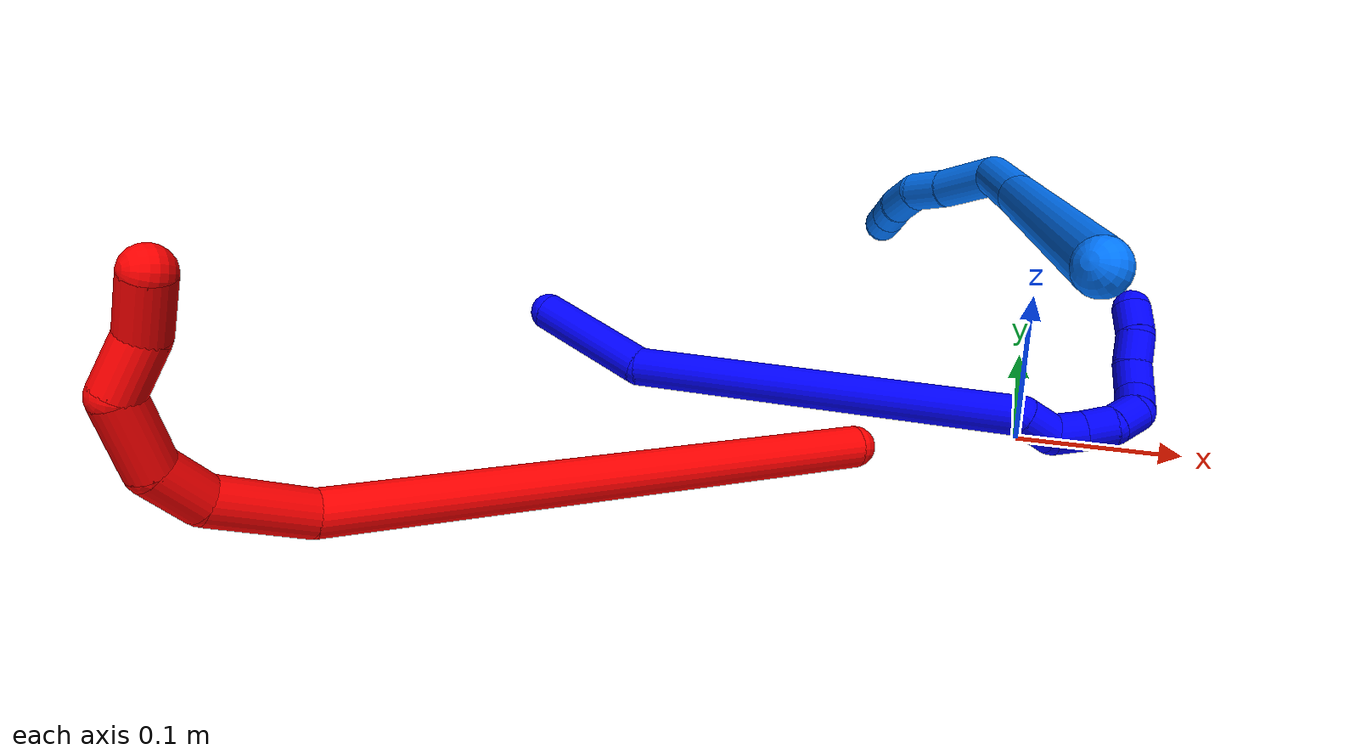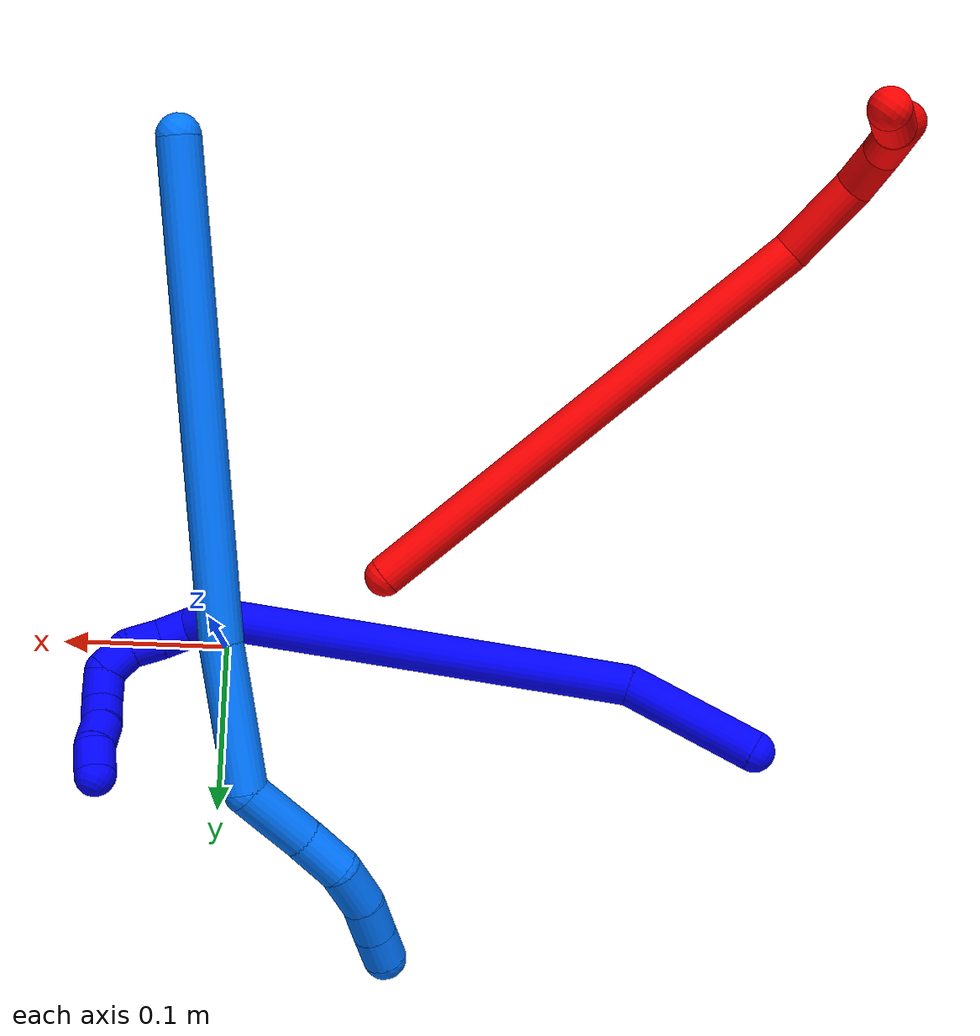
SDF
<sdf version="1.7">
 <world name="default">
  <model name="photoneo_s_sensor">
   <static>1</static>
   <pose>0 0 2 1.57079 1.57079 3.14159</pose>
   <link name="link">
    <inertial><mass>0.1</mass></inertial>
    <sensor name="sensor" type="depth">
     <update_rate>30</update_rate>
     <camera>
      <horizontal_fov>1.22</horizontal_fov>
      <image><width>1920</width><height>1200</height><format>B8G8R8</format></image>
      <clip><near>0.1</near><far>4</far></clip>
      <depth_camera><output>points</output></depth_camera>
     </camera>
     <plugin name="camera_plugin" filename="libgazebo_ros_depth_camera.so">
      <baseline>0.2</baseline>
      <alwaysOn>1</alwaysOn>
      <updateRate>0.0</updateRate>
      <cameraName>camera_ir</cameraName>
      <imageTopicName>/camera/color/image_raw</imageTopicName>
      <cameraInfoTopicName>/camera/color/camera_info</cameraInfoTopicName>
      <depthImageTopicName>/camera/depth/image_raw</depthImageTopicName>
      <depthImageCameraInfoTopicName>/camera/depth/camera_info</depthImageCameraInfoTopicName>
      <pointCloudTopicName>/camera/depth/points</pointCloudTopicName>
      <frameName>fr_optical</frameName>
      <pointCloudCutoff>0.1</pointCloudCutoff>
      <pointCloudCutoffMax>2.0</pointCloudCutoffMax>
      <distortionK1>0</distortionK1>
      <distortionK2>0</distortionK2>
      <distortionK3>0</distortionK3>
      <distortionT1>0</distortionT1>
      <distortionT2>0</distortionT2>
      <CxPrime>0</CxPrime>
      <Cx>0</Cx>
      <Cy>0</Cy>
      <focalLength>0</focalLength>
      <hackBaseline>0</hackBaseline>
     </plugin>
    </sensor>
   </link>
  </model>
  <model name="bin">
   <static>1</static>
   <link name="bottom">
    <collision name="collision-bottom">
     <pose>0 0 -0.01 0 -0 0</pose>
     <geometry><box><size>0.8 0.6 0.02</size></box></geometry>
     <surface>
      <friction><ode><mu>100</mu><mu2>100</mu2></ode></friction>
      <contact><collide_bitmask>65535</collide_bitmask></contact>
     </surface>
    </collision>
   </link>
   <link name="west_wall">
    <collision name="collision-west_wall">
     <pose>-0.41 0 0.1 0 -0 0</pose>
     <geometry><box><size>0.02 0.6 0.2</size></box></geometry>
     <surface>
      <friction><ode><mu>100</mu><mu2>100</mu2></ode></friction>
      <contact><collide_bitmask>65535</collide_bitmask></contact>
     </surface>
    </collision>
   </link>
   <link name="east_wall">
    <collision name="collision-east_wall">
     <pose>0.41 0 0.1 0 -0 0</pose>
     <geometry><box><size>0.02 0.6 0.2</size></box></geometry>
     <surface>
      <friction><ode><mu>100</mu><mu2>100</mu2></ode></friction>
      <contact><collide_bitmask>65535</collide_bitmask></contact>
     </surface>
    </collision>
   </link>
   <link name="south_wall">
    <collision name="collision-south_wall">
     <pose>0 -0.31 0.1 0 -0 0</pose>
     <geometry><box><size>0.8 0.02 0.2</size></box></geometry>
     <surface>
      <friction><ode><mu>100</mu><mu2>100</mu2></ode></friction>
      <contact><collide_bitmask>65535</collide_bitmask></contact>
     </surface>
    </collision>
   </link>
   <link name="north_wall">
    <collision name="collision-north_wall">
     <pose>0 0.31 0.1 0 -0 0</pose>
     <geometry><box><size>0.8 0.02 0.2</size></box></geometry>
     <surface>
      <friction><ode><mu>100</mu><mu2>100</mu2></ode></friction>
      <contact><collide_bitmask>65535</collide_bitmask></contact>
     </surface>
    </collision>
   </link>
  </model>
  <model name="1">
   <static>0</static>
   <link name="1">
    <collision name="collision-cylinder-e_1_1_4">
     <pose>0.037311 -0.018902 0.008462 1.14986 1.06408 0.728776</pose>
     <geometry><cylinder><radius>0.0125</radius><length>0.085346</length></cylinder></geometry>
     <surface>
      <friction><ode><mu>1.16</mu><mu2>1.16</mu2><slip1>0</slip1><slip2>0</slip2></ode></friction>
      <contact><ode><kp>1e+06</kp><kd>1</kd><max_vel>0</max_vel><min_depth>0.001</min_depth></ode></contact>
     </surface>
    </collision>
    <visual name="visual-cylinder-e_1_1_4">
     <pose>0.037311 -0.018902 0.008462 1.14986 1.06408 0.728776</pose>
     <geometry><cylinder><radius>0.0125</radius><length>0.085346</length></cylinder></geometry>
     <material><ambient>0 0 1 1</ambient></material>
    </visual>
    <collision name="collision-cylinder-e_2_4_5">
     <pose>0.189324 -0.082721 -0.007608 2.07069 1.15111 1.66021</pose>
     <geometry><cylinder><radius>0.0125</radius><length>0.251205</length></cylinder></geometry>
     <surface>
      <friction><ode><mu>1.16</mu><mu2>1.16</mu2><slip1>0</slip1><slip2>0</slip2></ode></friction>
      <contact><ode><kp>1e+06</kp><kd>1</kd><max_vel>0</max_vel><min_depth>0.001</min_depth></ode></contact>
     </surface>
    </collision>
    <visual name="visual-cylinder-e_2_4_5">
     <pose>0.189324 -0.082721 -0.007608 2.07069 1.15111 1.66021</pose>
     <geometry><cylinder><radius>0.0125</radius><length>0.251205</length></cylinder></geometry>
     <material><ambient>0 0 1 1</ambient></material>
    </visual>
    <collision name="collision-cylinder-e_3_5_6">
     <pose>0.308933 -0.137888 -0.03487 1.83108 0.433271 0.557823</pose>
     <geometry><cylinder><radius>0.0125</radius><length>0.023374</length></cylinder></geometry>
     <surface>
      <friction><ode><mu>1.16</mu><mu2>1.16</mu2><slip1>0</slip1><slip2>0</slip2></ode></friction>
      <contact><ode><kp>1e+06</kp><kd>1</kd><max_vel>0</max_vel><min_depth>0.001</min_depth></ode></contact>
     </surface>
    </collision>
    <visual name="visual-cylinder-e_3_5_6">
     <pose>0.308933 -0.137888 -0.03487 1.83108 0.433271 0.557823</pose>
     <geometry><cylinder><radius>0.0125</radius><length>0.023374</length></cylinder></geometry>
     <material><ambient>0 0 1 1</ambient></material>
    </visual>
    <collision name="collision-cylinder-e_4_6_7">
     <pose>0.320264 -0.152454 -0.043966 2.54577 0.695776 1.73644</pose>
     <geometry><cylinder><radius>0.0125</radius><length>0.020044</length></cylinder></geometry>
     <surface>
      <friction><ode><mu>1.16</mu><mu2>1.16</mu2><slip1>0</slip1><slip2>0</slip2></ode></friction>
      <contact><ode><kp>1e+06</kp><kd>1</kd><max_vel>0</max_vel><min_depth>0.001</min_depth></ode></contact>
     </surface>
    </collision>
    <visual name="visual-cylinder-e_4_6_7">
     <pose>0.320264 -0.152454 -0.043966 2.54577 0.695776 1.73644</pose>
     <geometry><cylinder><radius>0.0125</radius><length>0.020044</length></cylinder></geometry>
     <material><ambient>0 0 1 1</ambient></material>
    </visual>
    <collision name="collision-cylinder-e_5_7_8">
     <pose>0.333879 -0.160015 -0.0565 2.65725 0.801183 2.0855</pose>
     <geometry><cylinder><radius>0.0125</radius><length>0.020027</length></cylinder></geometry>
     <surface>
      <friction><ode><mu>1.16</mu><mu2>1.16</mu2><slip1>0</slip1><slip2>0</slip2></ode></friction>
      <contact><ode><kp>1e+06</kp><kd>1</kd><max_vel>0</max_vel><min_depth>0.001</min_depth></ode></contact>
     </surface>
    </collision>
    <visual name="visual-cylinder-e_5_7_8">
     <pose>0.333879 -0.160015 -0.0565 2.65725 0.801183 2.0855</pose>
     <geometry><cylinder><radius>0.0125</radius><length>0.020027</length></cylinder></geometry>
     <material><ambient>0 0 1 1</ambient></material>
    </visual>
    <collision name="collision-cylinder-e_6_8_9">
     <pose>0.34455 -0.165966 -0.071643 2.84875 0.355384 1.7665</pose>
     <geometry><cylinder><radius>0.0125</radius><length>0.020001</length></cylinder></geometry>
     <surface>
      <friction><ode><mu>1.16</mu><mu2>1.16</mu2><slip1>0</slip1><slip2>0</slip2></ode></friction>
      <contact><ode><kp>1e+06</kp><kd>1</kd><max_vel>0</max_vel><min_depth>0.001</min_depth></ode></contact>
     </surface>
    </collision>
    <visual name="visual-cylinder-e_6_8_9">
     <pose>0.34455 -0.165966 -0.071643 2.84875 0.355384 1.7665</pose>
     <geometry><cylinder><radius>0.0125</radius><length>0.020001</length></cylinder></geometry>
     <material><ambient>0 0 1 1</ambient></material>
    </visual>
    <collision name="collision-cylinder-e_7_9_10">
     <pose>0.344495 -0.16968 -0.089919 3.03377 -0.361225 -2.56693</pose>
     <geometry><cylinder><radius>0.0125</radius><length>0.02</length></cylinder></geometry>
     <surface>
      <friction><ode><mu>1.16</mu><mu2>1.16</mu2><slip1>0</slip1><slip2>0</slip2></ode></friction>
      <contact><ode><kp>1e+06</kp><kd>1</kd><max_vel>0</max_vel><min_depth>0.001</min_depth></ode></contact>
     </surface>
    </collision>
    <visual name="visual-cylinder-e_7_9_10">
     <pose>0.344495 -0.16968 -0.089919 3.03377 -0.361225 -2.56693</pose>
     <geometry><cylinder><radius>0.0125</radius><length>0.02</length></cylinder></geometry>
     <material><ambient>0 0 1 1</ambient></material>
    </visual>
    <collision name="collision-cylinder-e_8_10_11">
     <pose>0.339396 -0.164922 -0.107242 -2.51856 -0.157135 0.479592</pose>
     <geometry><cylinder><radius>0.0125</radius><length>0.020003</length></cylinder></geometry>
     <surface>
      <friction><ode><mu>1.16</mu><mu2>1.16</mu2><slip1>0</slip1><slip2>0</slip2></ode></friction>
      <contact><ode><kp>1e+06</kp><kd>1</kd><max_vel>0</max_vel><min_depth>0.001</min_depth></ode></contact>
     </surface>
    </collision>
    <visual name="visual-cylinder-e_8_10_11">
     <pose>0.339396 -0.164922 -0.107242 -2.51856 -0.157135 0.479592</pose>
     <geometry><cylinder><radius>0.0125</radius><length>0.020003</length></cylinder></geometry>
     <material><ambient>0 0 1 1</ambient></material>
    </visual>
    <collision name="collision-cylinder-e_9_11_12">
     <pose>0.337993 -0.154013 -0.123838 -2.60112 0.016186 -0.058416</pose>
     <geometry><cylinder><radius>0.0125</radius><length>0.02</length></cylinder></geometry>
     <surface>
      <friction><ode><mu>1.16</mu><mu2>1.16</mu2><slip1>0</slip1><slip2>0</slip2></ode></friction>
      <contact><ode><kp>1e+06</kp><kd>1</kd><max_vel>0</max_vel><min_depth>0.001</min_depth></ode></contact>
     </surface>
    </collision>
    <visual name="visual-cylinder-e_9_11_12">
     <pose>0.337993 -0.154013 -0.123838 -2.60112 0.016186 -0.058416</pose>
     <geometry><cylinder><radius>0.0125</radius><length>0.02</length></cylinder></geometry>
     <material><ambient>0 0 1 1</ambient></material>
    </visual>
    <collision name="collision-cylinder-e_10_12_2">
     <pose>0.335138 -0.145157 -0.141194 -2.74168 -0.306384 1.3021</pose>
     <geometry><cylinder><radius>0.0125</radius><length>0.02</length></cylinder></geometry>
     <surface>
      <friction><ode><mu>1.16</mu><mu2>1.16</mu2><slip1>0</slip1><slip2>0</slip2></ode></friction>
      <contact><ode><kp>1e+06</kp><kd>1</kd><max_vel>0</max_vel><min_depth>0.001</min_depth></ode></contact>
     </surface>
    </collision>
    <visual name="visual-cylinder-e_10_12_2">
     <pose>0.335138 -0.145157 -0.141194 -2.74168 -0.306384 1.3021</pose>
     <geometry><cylinder><radius>0.0125</radius><length>0.02</length></cylinder></geometry>
     <material><ambient>0 0 1 1</ambient></material>
    </visual>
    <collision name="collision-sphere-2">
     <pose>0.332122 -0.141444 -0.149976 0 -0 0</pose>
     <geometry><sphere><radius>0.0125</radius></sphere></geometry>
     <surface>
      <friction><ode><mu>1.16</mu><mu2>1.16</mu2><slip1>0</slip1><slip2>0</slip2></ode></friction>
      <contact><ode><kp>1e+06</kp><kd>1</kd><max_vel>0</max_vel><min_depth>0.001</min_depth></ode></contact>
     </surface>
    </collision>
    <visual name="visual-sphere-2">
     <pose>0.332122 -0.141444 -0.149976 0 -0 0</pose>
     <geometry><sphere><radius>0.0125</radius></sphere></geometry>
     <material><ambient>0 0 1 1</ambient></material>
    </visual>
    <collision name="collision-sphere-12">
     <pose>0.338154 -0.148869 -0.132412 0 -0 0</pose>
     <geometry><sphere><radius>0.0125</radius></sphere></geometry>
     <surface>
      <friction><ode><mu>1.16</mu><mu2>1.16</mu2><slip1>0</slip1><slip2>0</slip2></ode></friction>
      <contact><ode><kp>1e+06</kp><kd>1</kd><max_vel>0</max_vel><min_depth>0.001</min_depth></ode></contact>
     </surface>
    </collision>
    <visual name="visual-sphere-12">
     <pose>0.338154 -0.148869 -0.132412 0 -0 0</pose>
     <geometry><sphere><radius>0.0125</radius></sphere></geometry>
     <material><ambient>0 0 1 1</ambient></material>
    </visual>
    <collision name="collision-sphere-11">
     <pose>0.337831 -0.159158 -0.115265 0 -0 0</pose>
     <geometry><sphere><radius>0.0125</radius></sphere></geometry>
     <surface>
      <friction><ode><mu>1.16</mu><mu2>1.16</mu2><slip1>0</slip1><slip2>0</slip2></ode></friction>
      <contact><ode><kp>1e+06</kp><kd>1</kd><max_vel>0</max_vel><min_depth>0.001</min_depth></ode></contact>
     </surface>
    </collision>
    <visual name="visual-sphere-11">
     <pose>0.337831 -0.159158 -0.115265 0 -0 0</pose>
     <geometry><sphere><radius>0.0125</radius></sphere></geometry>
     <material><ambient>0 0 1 1</ambient></material>
    </visual>
    <collision name="collision-sphere-10">
     <pose>0.340961 -0.170686 -0.09922 0 -0 0</pose>
     <geometry><sphere><radius>0.0125</radius></sphere></geometry>
     <surface>
      <friction><ode><mu>1.16</mu><mu2>1.16</mu2><slip1>0</slip1><slip2>0</slip2></ode></friction>
      <contact><ode><kp>1e+06</kp><kd>1</kd><max_vel>0</max_vel><min_depth>0.001</min_depth></ode></contact>
     </surface>
    </collision>
    <visual name="visual-sphere-10">
     <pose>0.340961 -0.170686 -0.09922 0 -0 0</pose>
     <geometry><sphere><radius>0.0125</radius></sphere></geometry>
     <material><ambient>0 0 1 1</ambient></material>
    </visual>
    <collision name="collision-sphere-9">
     <pose>0.34803 -0.168673 -0.080619 0 -0 0</pose>
     <geometry><sphere><radius>0.0125</radius></sphere></geometry>
     <surface>
      <friction><ode><mu>1.16</mu><mu2>1.16</mu2><slip1>0</slip1><slip2>0</slip2></ode></friction>
      <contact><ode><kp>1e+06</kp><kd>1</kd><max_vel>0</max_vel><min_depth>0.001</min_depth></ode></contact>
     </surface>
    </collision>
    <visual name="visual-sphere-9">
     <pose>0.34803 -0.168673 -0.080619 0 -0 0</pose>
     <geometry><sphere><radius>0.0125</radius></sphere></geometry>
     <material><ambient>0 0 1 1</ambient></material>
    </visual>
    <collision name="collision-sphere-4">
     <pose>0.074622 -0.037803 0.016924 0 -0 0</pose>
     <geometry><sphere><radius>0.0125</radius></sphere></geometry>
     <surface>
      <friction><ode><mu>1.16</mu><mu2>1.16</mu2><slip1>0</slip1><slip2>0</slip2></ode></friction>
      <contact><ode><kp>1e+06</kp><kd>1</kd><max_vel>0</max_vel><min_depth>0.001</min_depth></ode></contact>
     </surface>
    </collision>
    <visual name="visual-sphere-4">
     <pose>0.074622 -0.037803 0.016924 0 -0 0</pose>
     <geometry><sphere><radius>0.0125</radius></sphere></geometry>
     <material><ambient>0 0 1 1</ambient></material>
    </visual>
    <collision name="collision-sphere-1">
     <geometry><sphere><radius>0.0125</radius></sphere></geometry>
     <surface>
      <friction><ode><mu>1.16</mu><mu2>1.16</mu2><slip1>0</slip1><slip2>0</slip2></ode></friction>
      <contact><ode><kp>1e+06</kp><kd>1</kd><max_vel>0</max_vel><min_depth>0.001</min_depth></ode></contact>
     </surface>
    </collision>
    <visual name="visual-sphere-1">
     <geometry><sphere><radius>0.0125</radius></sphere></geometry>
     <material><ambient>0 0 1 1</ambient></material>
    </visual>
    <collision name="collision-sphere-8">
     <pose>0.34107 -0.16326 -0.062666 0 -0 0</pose>
     <geometry><sphere><radius>0.0125</radius></sphere></geometry>
     <surface>
      <friction><ode><mu>1.16</mu><mu2>1.16</mu2><slip1>0</slip1><slip2>0</slip2></ode></friction>
      <contact><ode><kp>1e+06</kp><kd>1</kd><max_vel>0</max_vel><min_depth>0.001</min_depth></ode></contact>
     </surface>
    </collision>
    <visual name="visual-sphere-8">
     <pose>0.34107 -0.16326 -0.062666 0 -0 0</pose>
     <geometry><sphere><radius>0.0125</radius></sphere></geometry>
     <material><ambient>0 0 1 1</ambient></material>
    </visual>
    <collision name="collision-sphere-5">
     <pose>0.304026 -0.127638 -0.03214 0 -0 0</pose>
     <geometry><sphere><radius>0.0125</radius></sphere></geometry>
     <surface>
      <friction><ode><mu>1.16</mu><mu2>1.16</mu2><slip1>0</slip1><slip2>0</slip2></ode></friction>
      <contact><ode><kp>1e+06</kp><kd>1</kd><max_vel>0</max_vel><min_depth>0.001</min_depth></ode></contact>
     </surface>
    </collision>
    <visual name="visual-sphere-5">
     <pose>0.304026 -0.127638 -0.03214 0 -0 0</pose>
     <geometry><sphere><radius>0.0125</radius></sphere></geometry>
     <material><ambient>0 0 1 1</ambient></material>
    </visual>
    <collision name="collision-sphere-6">
     <pose>0.31384 -0.148137 -0.037599 0 -0 0</pose>
     <geometry><sphere><radius>0.0125</radius></sphere></geometry>
     <surface>
      <friction><ode><mu>1.16</mu><mu2>1.16</mu2><slip1>0</slip1><slip2>0</slip2></ode></friction>
      <contact><ode><kp>1e+06</kp><kd>1</kd><max_vel>0</max_vel><min_depth>0.001</min_depth></ode></contact>
     </surface>
    </collision>
    <visual name="visual-sphere-6">
     <pose>0.31384 -0.148137 -0.037599 0 -0 0</pose>
     <geometry><sphere><radius>0.0125</radius></sphere></geometry>
     <material><ambient>0 0 1 1</ambient></material>
    </visual>
    <collision name="collision-sphere-7">
     <pose>0.326687 -0.156771 -0.050333 0 -0 0</pose>
     <geometry><sphere><radius>0.0125</radius></sphere></geometry>
     <surface>
      <friction><ode><mu>1.16</mu><mu2>1.16</mu2><slip1>0</slip1><slip2>0</slip2></ode></friction>
      <contact><ode><kp>1e+06</kp><kd>1</kd><max_vel>0</max_vel><min_depth>0.001</min_depth></ode></contact>
     </surface>
    </collision>
    <visual name="visual-sphere-7">
     <pose>0.326687 -0.156771 -0.050333 0 -0 0</pose>
     <geometry><sphere><radius>0.0125</radius></sphere></geometry>
     <material><ambient>0 0 1 1</ambient></material>
    </visual>
    <inertial>
     <pose>0.210206 -0.095744 -0.029388 0 -0 0</pose>
     <mass>0.5</mass>
     <inertia>
      <ixx>0.000563</ixx>
      <ixy>0</ixy>
      <ixz>0</ixz>
      <iyy>0.001719</iyy>
      <iyz>0</iyz>
      <izz>-0.000776</izz>
     </inertia>
    </inertial>
   </link>
   <pose>-0.321985 0.056449 0.022664 1.83104 -0.369598 -0.405315</pose>
  </model>
  <model name="2">
   <static>0</static>
   <link name="2">
    <collision name="collision-cylinder-e_1_1_4">
     <pose>-0.029259 -0.040347 0.14996 0.262829 -0.186225 -0.024685</pose>
     <geometry><cylinder><radius>0.0125</radius><length>0.316051</length></cylinder></geometry>
     <surface>
      <friction><ode><mu>1.16</mu><mu2>1.16</mu2><slip1>0</slip1><slip2>0</slip2></ode></friction>
      <contact><ode><kp>1e+06</kp><kd>1</kd><max_vel>0</max_vel><min_depth>0.001</min_depth></ode></contact>
     </surface>
    </collision>
    <visual name="visual-cylinder-e_1_1_4">
     <pose>-0.029259 -0.040347 0.14996 0.262829 -0.186225 -0.024685</pose>
     <geometry><cylinder><radius>0.0125</radius><length>0.316051</length></cylinder></geometry>
     <material><ambient>1 0 0 1</ambient></material>
    </visual>
    <collision name="collision-cylinder-e_2_4_5">
     <pose>-0.063939 -0.078573 0.326318 -0.080179 -0.201931 0.008127</pose>
     <geometry><cylinder><radius>0.0125</radius><length>0.054063</length></cylinder></geometry>
     <surface>
      <friction><ode><mu>1.16</mu><mu2>1.16</mu2><slip1>0</slip1><slip2>0</slip2></ode></friction>
      <contact><ode><kp>1e+06</kp><kd>1</kd><max_vel>0</max_vel><min_depth>0.001</min_depth></ode></contact>
     </surface>
    </collision>
    <visual name="visual-cylinder-e_2_4_5">
     <pose>-0.063939 -0.078573 0.326318 -0.080179 -0.201931 0.008127</pose>
     <geometry><cylinder><radius>0.0125</radius><length>0.054063</length></cylinder></geometry>
     <material><ambient>1 0 0 1</ambient></material>
    </visual>
    <collision name="collision-cylinder-e_3_5_6">
     <pose>-0.073362 -0.069329 0.365291 -0.515398 -0.270116 0.071597</pose>
     <geometry><cylinder><radius>0.0125</radius><length>0.029994</length></cylinder></geometry>
     <surface>
      <friction><ode><mu>1.16</mu><mu2>1.16</mu2><slip1>0</slip1><slip2>0</slip2></ode></friction>
      <contact><ode><kp>1e+06</kp><kd>1</kd><max_vel>0</max_vel><min_depth>0.001</min_depth></ode></contact>
     </surface>
    </collision>
    <visual name="visual-cylinder-e_3_5_6">
     <pose>-0.073362 -0.069329 0.365291 -0.515398 -0.270116 0.071597</pose>
     <geometry><cylinder><radius>0.0125</radius><length>0.029994</length></cylinder></geometry>
     <material><ambient>1 0 0 1</ambient></material>
    </visual>
    <collision name="collision-cylinder-e_4_6_7">
     <pose>-0.084397 -0.04656 0.387837 -1.00337 -0.362375 0.200293</pose>
     <geometry><cylinder><radius>0.0125</radius><length>0.039681</length></cylinder></geometry>
     <surface>
      <friction><ode><mu>1.16</mu><mu2>1.16</mu2><slip1>0</slip1><slip2>0</slip2></ode></friction>
      <contact><ode><kp>1e+06</kp><kd>1</kd><max_vel>0</max_vel><min_depth>0.001</min_depth></ode></contact>
     </surface>
    </collision>
    <visual name="visual-cylinder-e_4_6_7">
     <pose>-0.084397 -0.04656 0.387837 -1.00337 -0.362375 0.200293</pose>
     <geometry><cylinder><radius>0.0125</radius><length>0.039681</length></cylinder></geometry>
     <material><ambient>1 0 0 1</ambient></material>
    </visual>
    <collision name="collision-cylinder-e_5_7_8">
     <pose>-0.095566 -0.017419 0.394436 -1.81566 -0.288944 0.368399</pose>
     <geometry><cylinder><radius>0.0125</radius><length>0.029027</length></cylinder></geometry>
     <surface>
      <friction><ode><mu>1.16</mu><mu2>1.16</mu2><slip1>0</slip1><slip2>0</slip2></ode></friction>
      <contact><ode><kp>1e+06</kp><kd>1</kd><max_vel>0</max_vel><min_depth>0.001</min_depth></ode></contact>
     </surface>
    </collision>
    <visual name="visual-cylinder-e_5_7_8">
     <pose>-0.095566 -0.017419 0.394436 -1.81566 -0.288944 0.368399</pose>
     <geometry><cylinder><radius>0.0125</radius><length>0.029027</length></cylinder></geometry>
     <material><ambient>1 0 0 1</ambient></material>
    </visual>
    <collision name="collision-cylinder-e_6_8_2">
     <pose>-0.102052 0.011263 0.393711 -1.39819 -0.15136 0.127326</pose>
     <geometry><cylinder><radius>0.0125</radius><length>0.031185</length></cylinder></geometry>
     <surface>
      <friction><ode><mu>1.16</mu><mu2>1.16</mu2><slip1>0</slip1><slip2>0</slip2></ode></friction>
      <contact><ode><kp>1e+06</kp><kd>1</kd><max_vel>0</max_vel><min_depth>0.001</min_depth></ode></contact>
     </surface>
    </collision>
    <visual name="visual-cylinder-e_6_8_2">
     <pose>-0.102052 0.011263 0.393711 -1.39819 -0.15136 0.127326</pose>
     <geometry><cylinder><radius>0.0125</radius><length>0.031185</length></cylinder></geometry>
     <material><ambient>1 0 0 1</ambient></material>
    </visual>
    <collision name="collision-sphere-2">
     <pose>-0.104403 0.026448 0.396358 0 -0 0</pose>
     <geometry><sphere><radius>0.0125</radius></sphere></geometry>
     <surface>
      <friction><ode><mu>1.16</mu><mu2>1.16</mu2><slip1>0</slip1><slip2>0</slip2></ode></friction>
      <contact><ode><kp>1e+06</kp><kd>1</kd><max_vel>0</max_vel><min_depth>0.001</min_depth></ode></contact>
     </surface>
    </collision>
    <visual name="visual-sphere-2">
     <pose>-0.104403 0.026448 0.396358 0 -0 0</pose>
     <geometry><sphere><radius>0.0125</radius></sphere></geometry>
     <material><ambient>1 0 0 1</ambient></material>
    </visual>
    <collision name="collision-sphere-4">
     <pose>-0.058517 -0.080695 0.299921 0 -0 0</pose>
     <geometry><sphere><radius>0.0125</radius></sphere></geometry>
     <surface>
      <friction><ode><mu>1.16</mu><mu2>1.16</mu2><slip1>0</slip1><slip2>0</slip2></ode></friction>
      <contact><ode><kp>1e+06</kp><kd>1</kd><max_vel>0</max_vel><min_depth>0.001</min_depth></ode></contact>
     </surface>
    </collision>
    <visual name="visual-sphere-4">
     <pose>-0.058517 -0.080695 0.299921 0 -0 0</pose>
     <geometry><sphere><radius>0.0125</radius></sphere></geometry>
     <material><ambient>1 0 0 1</ambient></material>
    </visual>
    <collision name="collision-sphere-1">
     <geometry><sphere><radius>0.0125</radius></sphere></geometry>
     <surface>
      <friction><ode><mu>1.16</mu><mu2>1.16</mu2><slip1>0</slip1><slip2>0</slip2></ode></friction>
      <contact><ode><kp>1e+06</kp><kd>1</kd><max_vel>0</max_vel><min_depth>0.001</min_depth></ode></contact>
     </surface>
    </collision>
    <visual name="visual-sphere-1">
     <geometry><sphere><radius>0.0125</radius></sphere></geometry>
     <material><ambient>1 0 0 1</ambient></material>
    </visual>
    <collision name="collision-sphere-8">
     <pose>-0.099701 -0.003922 0.391063 0 -0 0</pose>
     <geometry><sphere><radius>0.0125</radius></sphere></geometry>
     <surface>
      <friction><ode><mu>1.16</mu><mu2>1.16</mu2><slip1>0</slip1><slip2>0</slip2></ode></friction>
      <contact><ode><kp>1e+06</kp><kd>1</kd><max_vel>0</max_vel><min_depth>0.001</min_depth></ode></contact>
     </surface>
    </collision>
    <visual name="visual-sphere-8">
     <pose>-0.099701 -0.003922 0.391063 0 -0 0</pose>
     <geometry><sphere><radius>0.0125</radius></sphere></geometry>
     <material><ambient>1 0 0 1</ambient></material>
    </visual>
    <collision name="collision-sphere-5">
     <pose>-0.06936 -0.076452 0.352715 0 -0 0</pose>
     <geometry><sphere><radius>0.0125</radius></sphere></geometry>
     <surface>
      <friction><ode><mu>1.16</mu><mu2>1.16</mu2><slip1>0</slip1><slip2>0</slip2></ode></friction>
      <contact><ode><kp>1e+06</kp><kd>1</kd><max_vel>0</max_vel><min_depth>0.001</min_depth></ode></contact>
     </surface>
    </collision>
    <visual name="visual-sphere-5">
     <pose>-0.06936 -0.076452 0.352715 0 -0 0</pose>
     <geometry><sphere><radius>0.0125</radius></sphere></geometry>
     <material><ambient>1 0 0 1</ambient></material>
    </visual>
    <collision name="collision-sphere-6">
     <pose>-0.077364 -0.062205 0.377866 0 -0 0</pose>
     <geometry><sphere><radius>0.0125</radius></sphere></geometry>
     <surface>
      <friction><ode><mu>1.16</mu><mu2>1.16</mu2><slip1>0</slip1><slip2>0</slip2></ode></friction>
      <contact><ode><kp>1e+06</kp><kd>1</kd><max_vel>0</max_vel><min_depth>0.001</min_depth></ode></contact>
     </surface>
    </collision>
    <visual name="visual-sphere-6">
     <pose>-0.077364 -0.062205 0.377866 0 -0 0</pose>
     <geometry><sphere><radius>0.0125</radius></sphere></geometry>
     <material><ambient>1 0 0 1</ambient></material>
    </visual>
    <collision name="collision-sphere-7">
     <pose>-0.09143 -0.030916 0.397808 0 -0 0</pose>
     <geometry><sphere><radius>0.0125</radius></sphere></geometry>
     <surface>
      <friction><ode><mu>1.16</mu><mu2>1.16</mu2><slip1>0</slip1><slip2>0</slip2></ode></friction>
      <contact><ode><kp>1e+06</kp><kd>1</kd><max_vel>0</max_vel><min_depth>0.001</min_depth></ode></contact>
     </surface>
    </collision>
    <visual name="visual-sphere-7">
     <pose>-0.09143 -0.030916 0.397808 0 -0 0</pose>
     <geometry><sphere><radius>0.0125</radius></sphere></geometry>
     <material><ambient>1 0 0 1</ambient></material>
    </visual>
    <inertial>
     <pose>-0.048419 -0.042162 0.23022 0 -0 0</pose>
     <mass>0.5</mass>
     <inertia>
      <ixx>0.002559</ixx>
      <ixy>0</ixy>
      <ixz>0</ixz>
      <iyy>0.002518</iyy>
      <iyz>0</iyz>
      <izz>0.001188</izz>
     </inertia>
    </inertial>
   </link>
   <pose>-0.095869 -0.045473 0.011499 1.15284 0.30018 -0.751594</pose>
  </model>
  <model name="14">
   <static>0</static>
   <link name="14">
    <collision name="collision-cylinder-e_1_1_4">
     <pose>0.003725 0.081868 -0.109534 -2.49974 0.027231 -0.081879</pose>
     <geometry><cylinder><radius>0.0125</radius><length>0.273597</length></cylinder></geometry>
     <surface>
      <friction><ode><mu>1.16</mu><mu2>1.16</mu2><slip1>0</slip1><slip2>0</slip2></ode></friction>
      <contact><ode><kp>1e+06</kp><kd>1</kd><max_vel>0</max_vel><min_depth>0.001</min_depth></ode></contact>
     </surface>
    </collision>
    <visual name="visual-cylinder-e_1_1_4">
     <pose>0.003725 0.081868 -0.109534 -2.49974 0.027231 -0.081879</pose>
     <geometry><cylinder><radius>0.0125</radius><length>0.273597</length></cylinder></geometry>
     <material><ambient>0 0.462745 1 1</ambient></material>
    </visual>
    <collision name="collision-cylinder-e_2_4_5">
     <pose>0.009263 0.191833 -0.249445 -2.39517 0.043792 -0.111741</pose>
     <geometry><cylinder><radius>0.0125</radius><length>0.082838</length></cylinder></geometry>
     <surface>
      <friction><ode><mu>1.16</mu><mu2>1.16</mu2><slip1>0</slip1><slip2>0</slip2></ode></friction>
      <contact><ode><kp>1e+06</kp><kd>1</kd><max_vel>0</max_vel><min_depth>0.001</min_depth></ode></contact>
     </surface>
    </collision>
    <visual name="visual-cylinder-e_2_4_5">
     <pose>0.009263 0.191833 -0.249445 -2.39517 0.043792 -0.111741</pose>
     <geometry><cylinder><radius>0.0125</radius><length>0.082838</length></cylinder></geometry>
     <material><ambient>0 0.462745 1 1</ambient></material>
    </visual>
    <collision name="collision-cylinder-e_3_5_6">
     <pose>7.9e-05 0.237356 -0.286304 -1.92688 -0.53411 0.750056</pose>
     <geometry><cylinder><radius>0.0125</radius><length>0.043203</length></cylinder></geometry>
     <surface>
      <friction><ode><mu>1.16</mu><mu2>1.16</mu2><slip1>0</slip1><slip2>0</slip2></ode></friction>
      <contact><ode><kp>1e+06</kp><kd>1</kd><max_vel>0</max_vel><min_depth>0.001</min_depth></ode></contact>
     </surface>
    </collision>
    <visual name="visual-cylinder-e_3_5_6">
     <pose>7.9e-05 0.237356 -0.286304 -1.92688 -0.53411 0.750056</pose>
     <geometry><cylinder><radius>0.0125</radius><length>0.043203</length></cylinder></geometry>
     <material><ambient>0 0.462745 1 1</ambient></material>
    </visual>
    <collision name="collision-cylinder-e_4_6_7">
     <pose>-0.016966 0.267068 -0.296918 -1.89527 -0.436623 0.598806</pose>
     <geometry><cylinder><radius>0.0125</radius><length>0.028607</length></cylinder></geometry>
     <surface>
      <friction><ode><mu>1.16</mu><mu2>1.16</mu2><slip1>0</slip1><slip2>0</slip2></ode></friction>
      <contact><ode><kp>1e+06</kp><kd>1</kd><max_vel>0</max_vel><min_depth>0.001</min_depth></ode></contact>
     </surface>
    </collision>
    <visual name="visual-cylinder-e_4_6_7">
     <pose>-0.016966 0.267068 -0.296918 -1.89527 -0.436623 0.598806</pose>
     <geometry><cylinder><radius>0.0125</radius><length>0.028607</length></cylinder></geometry>
     <material><ambient>0 0.462745 1 1</ambient></material>
    </visual>
    <collision name="collision-cylinder-e_5_7_8">
     <pose>-0.030564 0.288364 -0.309215 -2.30697 -0.555567 1.14314</pose>
     <geometry><cylinder><radius>0.0125</radius><length>0.028625</length></cylinder></geometry>
     <surface>
      <friction><ode><mu>1.16</mu><mu2>1.16</mu2><slip1>0</slip1><slip2>0</slip2></ode></friction>
      <contact><ode><kp>1e+06</kp><kd>1</kd><max_vel>0</max_vel><min_depth>0.001</min_depth></ode></contact>
     </surface>
    </collision>
    <visual name="visual-cylinder-e_5_7_8">
     <pose>-0.030564 0.288364 -0.309215 -2.30697 -0.555567 1.14314</pose>
     <geometry><cylinder><radius>0.0125</radius><length>0.028625</length></cylinder></geometry>
     <material><ambient>0 0.462745 1 1</ambient></material>
    </visual>
    <collision name="collision-cylinder-e_6_8_9">
     <pose>-0.043145 0.303503 -0.325493 -2.49476 -0.459584 1.21863</pose>
     <geometry><cylinder><radius>0.0125</radius><length>0.022688</length></cylinder></geometry>
     <surface>
      <friction><ode><mu>1.16</mu><mu2>1.16</mu2><slip1>0</slip1><slip2>0</slip2></ode></friction>
      <contact><ode><kp>1e+06</kp><kd>1</kd><max_vel>0</max_vel><min_depth>0.001</min_depth></ode></contact>
     </surface>
    </collision>
    <visual name="visual-cylinder-e_6_8_9">
     <pose>-0.043145 0.303503 -0.325493 -2.49476 -0.459584 1.21863</pose>
     <geometry><cylinder><radius>0.0125</radius><length>0.022688</length></cylinder></geometry>
     <material><ambient>0 0.462745 1 1</ambient></material>
    </visual>
    <collision name="collision-cylinder-e_7_9_2">
     <pose>-0.052707 0.315265 -0.340831 -2.47918 -0.459276 1.19407</pose>
     <geometry><cylinder><radius>0.0125</radius><length>0.020442</length></cylinder></geometry>
     <surface>
      <friction><ode><mu>1.16</mu><mu2>1.16</mu2><slip1>0</slip1><slip2>0</slip2></ode></friction>
      <contact><ode><kp>1e+06</kp><kd>1</kd><max_vel>0</max_vel><min_depth>0.001</min_depth></ode></contact>
     </surface>
    </collision>
    <visual name="visual-cylinder-e_7_9_2">
     <pose>-0.052707 0.315265 -0.340831 -2.47918 -0.459276 1.19407</pose>
     <geometry><cylinder><radius>0.0125</radius><length>0.020442</length></cylinder></geometry>
     <material><ambient>0 0.462745 1 1</ambient></material>
    </visual>
    <collision name="collision-sphere-2">
     <pose>-0.057238 0.320899 -0.348055 0 -0 0</pose>
     <geometry><sphere><radius>0.0125</radius></sphere></geometry>
     <surface>
      <friction><ode><mu>1.16</mu><mu2>1.16</mu2><slip1>0</slip1><slip2>0</slip2></ode></friction>
      <contact><ode><kp>1e+06</kp><kd>1</kd><max_vel>0</max_vel><min_depth>0.001</min_depth></ode></contact>
     </surface>
    </collision>
    <visual name="visual-sphere-2">
     <pose>-0.057238 0.320899 -0.348055 0 -0 0</pose>
     <geometry><sphere><radius>0.0125</radius></sphere></geometry>
     <material><ambient>0 0.462745 1 1</ambient></material>
    </visual>
    <collision name="collision-sphere-9">
     <pose>-0.048176 0.30963 -0.333606 0 -0 0</pose>
     <geometry><sphere><radius>0.0125</radius></sphere></geometry>
     <surface>
      <friction><ode><mu>1.16</mu><mu2>1.16</mu2><slip1>0</slip1><slip2>0</slip2></ode></friction>
      <contact><ode><kp>1e+06</kp><kd>1</kd><max_vel>0</max_vel><min_depth>0.001</min_depth></ode></contact>
     </surface>
    </collision>
    <visual name="visual-sphere-9">
     <pose>-0.048176 0.30963 -0.333606 0 -0 0</pose>
     <geometry><sphere><radius>0.0125</radius></sphere></geometry>
     <material><ambient>0 0.462745 1 1</ambient></material>
    </visual>
    <collision name="collision-sphere-4">
     <pose>0.007449 0.163736 -0.219067 0 -0 0</pose>
     <geometry><sphere><radius>0.0125</radius></sphere></geometry>
     <surface>
      <friction><ode><mu>1.16</mu><mu2>1.16</mu2><slip1>0</slip1><slip2>0</slip2></ode></friction>
      <contact><ode><kp>1e+06</kp><kd>1</kd><max_vel>0</max_vel><min_depth>0.001</min_depth></ode></contact>
     </surface>
    </collision>
    <visual name="visual-sphere-4">
     <pose>0.007449 0.163736 -0.219067 0 -0 0</pose>
     <geometry><sphere><radius>0.0125</radius></sphere></geometry>
     <material><ambient>0 0.462745 1 1</ambient></material>
    </visual>
    <collision name="collision-sphere-1">
     <geometry><sphere><radius>0.0125</radius></sphere></geometry>
     <surface>
      <friction><ode><mu>1.16</mu><mu2>1.16</mu2><slip1>0</slip1><slip2>0</slip2></ode></friction>
      <contact><ode><kp>1e+06</kp><kd>1</kd><max_vel>0</max_vel><min_depth>0.001</min_depth></ode></contact>
     </surface>
    </collision>
    <visual name="visual-sphere-1">
     <geometry><sphere><radius>0.0125</radius></sphere></geometry>
     <material><ambient>0 0.462745 1 1</ambient></material>
    </visual>
    <collision name="collision-sphere-8">
     <pose>-0.038113 0.297375 -0.31738 0 -0 0</pose>
     <geometry><sphere><radius>0.0125</radius></sphere></geometry>
     <surface>
      <friction><ode><mu>1.16</mu><mu2>1.16</mu2><slip1>0</slip1><slip2>0</slip2></ode></friction>
      <contact><ode><kp>1e+06</kp><kd>1</kd><max_vel>0</max_vel><min_depth>0.001</min_depth></ode></contact>
     </surface>
    </collision>
    <visual name="visual-sphere-8">
     <pose>-0.038113 0.297375 -0.31738 0 -0 0</pose>
     <geometry><sphere><radius>0.0125</radius></sphere></geometry>
     <material><ambient>0 0.462745 1 1</ambient></material>
    </visual>
    <collision name="collision-sphere-5">
     <pose>0.011076 0.21993 -0.279822 0 -0 0</pose>
     <geometry><sphere><radius>0.0125</radius></sphere></geometry>
     <surface>
      <friction><ode><mu>1.16</mu><mu2>1.16</mu2><slip1>0</slip1><slip2>0</slip2></ode></friction>
      <contact><ode><kp>1e+06</kp><kd>1</kd><max_vel>0</max_vel><min_depth>0.001</min_depth></ode></contact>
     </surface>
    </collision>
    <visual name="visual-sphere-5">
     <pose>0.011076 0.21993 -0.279822 0 -0 0</pose>
     <geometry><sphere><radius>0.0125</radius></sphere></geometry>
     <material><ambient>0 0.462745 1 1</ambient></material>
    </visual>
    <collision name="collision-sphere-6">
     <pose>-0.010917 0.254782 -0.292785 0 -0 0</pose>
     <geometry><sphere><radius>0.0125</radius></sphere></geometry>
     <surface>
      <friction><ode><mu>1.16</mu><mu2>1.16</mu2><slip1>0</slip1><slip2>0</slip2></ode></friction>
      <contact><ode><kp>1e+06</kp><kd>1</kd><max_vel>0</max_vel><min_depth>0.001</min_depth></ode></contact>
     </surface>
    </collision>
    <visual name="visual-sphere-6">
     <pose>-0.010917 0.254782 -0.292785 0 -0 0</pose>
     <geometry><sphere><radius>0.0125</radius></sphere></geometry>
     <material><ambient>0 0.462745 1 1</ambient></material>
    </visual>
    <collision name="collision-sphere-7">
     <pose>-0.023015 0.279353 -0.30105 0 -0 0</pose>
     <geometry><sphere><radius>0.0125</radius></sphere></geometry>
     <surface>
      <friction><ode><mu>1.16</mu><mu2>1.16</mu2><slip1>0</slip1><slip2>0</slip2></ode></friction>
      <contact><ode><kp>1e+06</kp><kd>1</kd><max_vel>0</max_vel><min_depth>0.001</min_depth></ode></contact>
     </surface>
    </collision>
    <visual name="visual-sphere-7">
     <pose>-0.023015 0.279353 -0.30105 0 -0 0</pose>
     <geometry><sphere><radius>0.0125</radius></sphere></geometry>
     <material><ambient>0 0.462745 1 1</ambient></material>
    </visual>
    <inertial>
     <pose>-0.003254 0.155539 -0.189396 0 -0 0</pose>
     <mass>0.5</mass>
     <inertia>
      <ixx>0.001632</ixx>
      <ixy>0</ixy>
      <ixz>0</ixz>
      <iyy>-0.001514</iyy>
      <iyz>0</iyz>
      <izz>-0.001143</izz>
     </inertia>
    </inertial>
   </link>
   <pose>0.013744 -0.233484 0.241604 0.227737 -0.999162 0.73847</pose>
  </model>
 </world>
</sdf>
